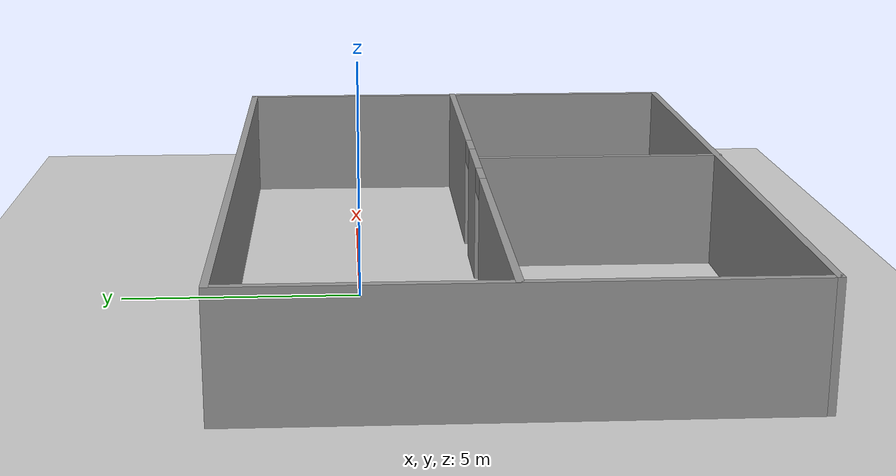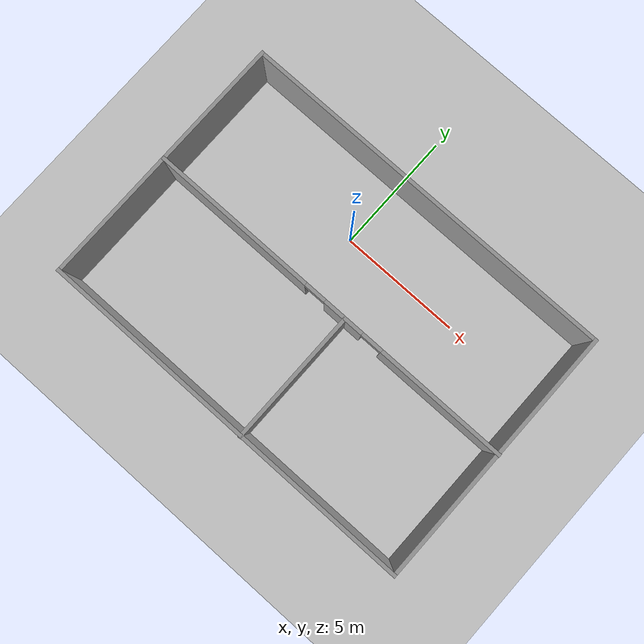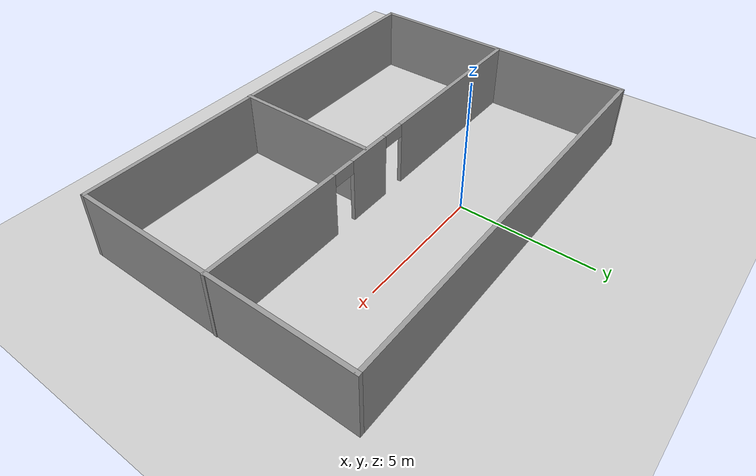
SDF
<sdf version="1.6">
 <world name="default">
  <light name="sun" type="directional">
   <pose>0 0 10 0 -0 0</pose>
   <diffuse>0.8 0.8 0.8 1</diffuse>
   <specular>0.2 0.2 0.2 1</specular>
   <attenuation>
    <range>1000</range>
    <constant>0.9</constant>
    <linear>0.01</linear>
    <quadratic>0.001</quadratic>
   </attenuation>
   <direction>-0.5 0.1 -0.9</direction>
  </light>
  <model name="ground_plane">
   <static>1</static>
   <link name="link">
    <collision name="collision">
     <geometry><plane><normal>0 0 1</normal><size>100 100</size></plane></geometry>
     <surface>
      <contact><collide_bitmask>65535</collide_bitmask></contact>
      <friction><ode><mu>100</mu><mu2>50</mu2></ode></friction>
     </surface>
    </collision>
    <visual name="visual">
     <cast_shadows>0</cast_shadows>
     <geometry><plane><normal>0 0 1</normal><size>100 100</size></plane></geometry>
     <material>
      <script><uri>file://media/materials/scripts/gazebo.material</uri><name>Gazebo/Grey</name></script>
     </material>
    </visual>
   </link>
  </model>
  <gravity>0 0 -9.8</gravity>
  <magnetic_field>6e-06 2.3e-05 -4.2e-05</magnetic_field>
  <atmosphere type="adiabatic"/>
  <physics name="default_physics" default="0" type="ode">
   <max_step_size>0.001</max_step_size>
   <real_time_factor>1</real_time_factor>
   <real_time_update_rate>1000</real_time_update_rate>
  </physics>
  <scene><ambient>0.4 0.4 0.4 1</ambient><background>0.7 0.7 0.7 1</background><shadows>1</shadows></scene>
  <audio><device>default</device></audio>
  <spherical_coordinates>
   <surface_model>EARTH_WGS84</surface_model>
   <latitude_deg>0</latitude_deg>
   <longitude_deg>0</longitude_deg>
   <elevation>0</elevation>
   <heading_deg>0</heading_deg>
  </spherical_coordinates>
  <model name="house1">
   <pose>1.1562 -2.68351 0 0 -0 0</pose>
   <link name="Wall_0">
    <collision name="Wall_0_Collision">
     <geometry><box><size>15.75 0.15 2.5</size></box></geometry>
     <pose>0 0 1.25 0 -0 0</pose>
    </collision>
    <visual name="Wall_0_Visual">
     <pose>0 0 1.25 0 -0 0</pose>
     <geometry><box><size>15.75 0.15 2.5</size></box></geometry>
     <material>
      <script><uri>file://media/materials/scripts/gazebo.material</uri><name>Gazebo/Grey</name></script>
      <ambient>1 1 1 1</ambient>
     </material>
     <meta><layer>0</layer></meta>
    </visual>
    <pose>-0.010056 -5.29005 0 0 -0 0</pose>
   </link>
   <link name="Wall_10">
    <collision name="Wall_10_Collision">
     <geometry><box><size>5.5 0.15 2.5</size></box></geometry>
     <pose>0 0 1.25 0 -0 0</pose>
    </collision>
    <visual name="Wall_10_Visual">
     <pose>0 0 1.25 0 -0 0</pose>
     <geometry><box><size>5.5 0.15 2.5</size></box></geometry>
     <material>
      <script><uri>file://media/materials/scripts/gazebo.material</uri><name>Gazebo/Grey</name></script>
      <ambient>1 1 1 1</ambient>
     </material>
     <meta><layer>0</layer></meta>
    </visual>
    <pose>0.798552 -2.63495 0 0 -0 -1.5708</pose>
   </link>
   <link name="Wall_2">
    <collision name="Wall_2_Collision">
     <geometry><box><size>10.75 0.15 2.5</size></box></geometry>
     <pose>0 0 1.25 0 -0 0</pose>
    </collision>
    <visual name="Wall_2_Visual">
     <pose>0 0 1.25 0 -0 0</pose>
     <geometry><box><size>10.75 0.15 2.5</size></box></geometry>
     <material>
      <script><uri>file://media/materials/scripts/gazebo.material</uri><name>Gazebo/Grey</name></script>
      <ambient>1 1 1 1</ambient>
     </material>
     <meta><layer>0</layer></meta>
    </visual>
    <pose>-7.81006 0.009952 0 0 -0 1.5708</pose>
   </link>
   <link name="Wall_4">
    <collision name="Wall_4_Collision">
     <geometry><box><size>15.75 0.15 2.5</size></box></geometry>
     <pose>0 0 1.25 0 -0 0</pose>
    </collision>
    <visual name="Wall_4_Visual">
     <pose>0 0 1.25 0 -0 0</pose>
     <geometry><box><size>15.75 0.15 2.5</size></box></geometry>
     <material>
      <script><uri>file://media/materials/scripts/gazebo.material</uri><name>Gazebo/Grey</name></script>
      <ambient>1 1 1 1</ambient>
     </material>
     <meta><layer>0</layer></meta>
    </visual>
    <pose>-0.010056 5.30995 0 0 -0 0</pose>
   </link>
   <link name="Wall_6">
    <collision name="Wall_6_Collision">
     <geometry><box><size>10.75 0.15 2.5</size></box></geometry>
     <pose>0 0 1.25 0 -0 0</pose>
    </collision>
    <visual name="Wall_6_Visual">
     <pose>0 0 1.25 0 -0 0</pose>
     <geometry><box><size>10.75 0.15 2.5</size></box></geometry>
     <material>
      <script><uri>file://media/materials/scripts/gazebo.material</uri><name>Gazebo/Grey</name></script>
      <ambient>1 1 1 1</ambient>
     </material>
     <meta><layer>0</layer></meta>
    </visual>
    <pose>7.78994 0.009952 0 0 -0 -1.5708</pose>
   </link>
   <link name="Wall_8">
    <pose>0.010057 0.100389 0 0 -0 0</pose>
    <visual name="Wall_8_Visual_0">
     <pose>-4.46217 0 1.25 0 -0 0</pose>
     <geometry><box><size>6.82566 0.15 2.5</size></box></geometry>
     <material>
      <script><uri>file://media/materials/scripts/gazebo.material</uri><name>Gazebo/Grey</name></script>
      <ambient>1 1 1 1</ambient>
     </material>
     <meta><layer>0</layer></meta>
    </visual>
    <collision name="Wall_8_Collision_0">
     <geometry><box><size>6.82566 0.15 2.5</size></box></geometry>
     <pose>-4.46217 0 1.25 0 -0 0</pose>
    </collision>
    <visual name="Wall_8_Visual_1">
     <pose>0.718098 0 1.25 0 -0 0</pose>
     <geometry><box><size>1.73488 0.15 2.5</size></box></geometry>
     <material>
      <script><uri>file://media/materials/scripts/gazebo.material</uri><name>Gazebo/Grey</name></script>
      <ambient>1 1 1 1</ambient>
     </material>
     <meta><layer>0</layer></meta>
    </visual>
    <collision name="Wall_8_Collision_1">
     <geometry><box><size>1.73488 0.15 2.5</size></box></geometry>
     <pose>0.718098 0 1.25 0 -0 0</pose>
    </collision>
    <visual name="Wall_8_Visual_2">
     <pose>5.18027 0 1.25 0 -0 0</pose>
     <geometry><box><size>5.38946 0.15 2.5</size></box></geometry>
     <material>
      <script><uri>file://media/materials/scripts/gazebo.material</uri><name>Gazebo/Grey</name></script>
      <ambient>1 1 1 1</ambient>
     </material>
     <meta><layer>0</layer></meta>
    </visual>
    <collision name="Wall_8_Collision_2">
     <geometry><box><size>5.38946 0.15 2.5</size></box></geometry>
     <pose>5.18027 0 1.25 0 -0 0</pose>
    </collision>
    <visual name="Wall_8_Visual_3">
     <pose>-0.599341 0 2.25 0 -0 0</pose>
     <geometry><box><size>0.9 0.15 0.5</size></box></geometry>
     <material>
      <script><uri>file://media/materials/scripts/gazebo.material</uri><name>Gazebo/Grey</name></script>
      <ambient>1 1 1 1</ambient>
     </material>
     <meta><layer>0</layer></meta>
    </visual>
    <collision name="Wall_8_Collision_3">
     <geometry><box><size>0.9 0.15 0.5</size></box></geometry>
     <pose>-0.599341 0 2.25 0 -0 0</pose>
    </collision>
    <visual name="Wall_8_Visual_4">
     <pose>2.03554 0 2.25 0 -0 0</pose>
     <geometry><box><size>0.9 0.15 0.5</size></box></geometry>
     <material>
      <script><uri>file://media/materials/scripts/gazebo.material</uri><name>Gazebo/Grey</name></script>
      <ambient>1 1 1 1</ambient>
     </material>
     <meta><layer>0</layer></meta>
    </visual>
    <collision name="Wall_8_Collision_4">
     <geometry><box><size>0.9 0.15 0.5</size></box></geometry>
     <pose>2.03554 0 2.25 0 -0 0</pose>
    </collision>
   </link>
   <static>1</static>
  </model>
 </world>
</sdf>
